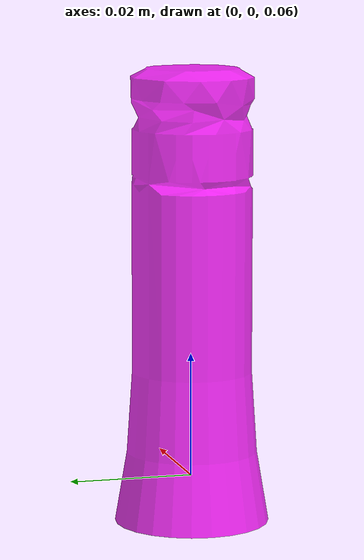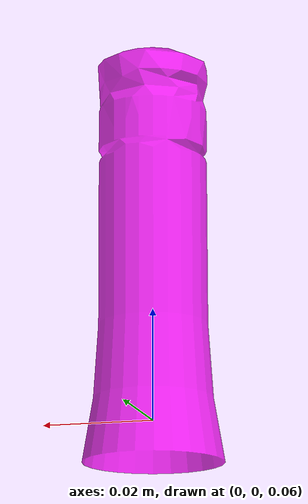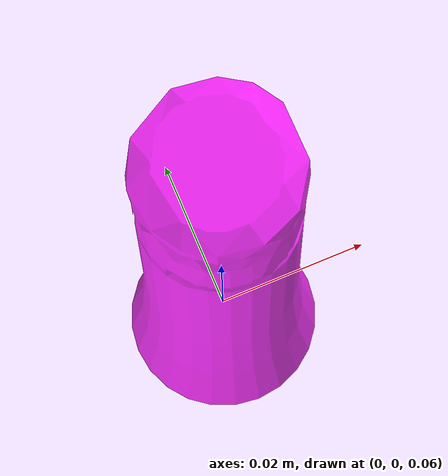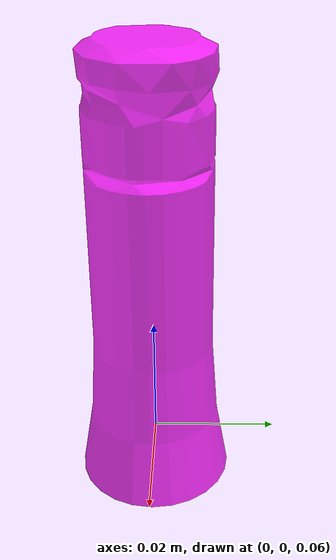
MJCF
<mujoco model="bottom_watertight_tiny">
  <default>
    <default group="2" type="mesh" contype="0" conaffinity="0">
      <geom group="2" type="mesh" contype="0" conaffinity="0"/>
    </default>
    <default group="3" type="mesh">
      <geom group="3" type="mesh"/>
    </default>
  </default>
  <asset>
    <mesh file="bottom_watertight_tiny.obj"/>
    <mesh file="bottom_watertight_tiny_collision_0.obj"/>
    <mesh file="bottom_watertight_tiny_collision_1.obj"/>
    <mesh file="bottom_watertight_tiny_collision_2.obj"/>
    <mesh file="bottom_watertight_tiny_collision_3.obj"/>
    <mesh file="bottom_watertight_tiny_collision_4.obj"/>
    <mesh file="bottom_watertight_tiny_collision_5.obj"/>
    <mesh file="bottom_watertight_tiny_collision_6.obj"/>
    <mesh file="bottom_watertight_tiny_collision_7.obj"/>
    <mesh file="bottom_watertight_tiny_collision_8.obj"/>
    <mesh file="bottom_watertight_tiny_collision_9.obj"/>
    <mesh file="bottom_watertight_tiny_collision_10.obj"/>
    <mesh file="bottom_watertight_tiny_collision_11.obj"/>
    <mesh file="bottom_watertight_tiny_collision_12.obj"/>
    <mesh file="bottom_watertight_tiny_collision_13.obj"/>
    <mesh file="bottom_watertight_tiny_collision_14.obj"/>
    <mesh file="bottom_watertight_tiny_collision_15.obj"/>
    <mesh file="bottom_watertight_tiny_collision_16.obj"/>
    <mesh file="bottom_watertight_tiny_collision_17.obj"/>
    <mesh file="bottom_watertight_tiny_collision_18.obj"/>
    <mesh file="bottom_watertight_tiny_collision_19.obj"/>
    <mesh file="bottom_watertight_tiny_collision_20.obj"/>
    <mesh file="bottom_watertight_tiny_collision_21.obj"/>
    <mesh file="bottom_watertight_tiny_collision_22.obj"/>
    <mesh file="bottom_watertight_tiny_collision_23.obj"/>
    <mesh file="bottom_watertight_tiny_collision_24.obj"/>
    <mesh file="bottom_watertight_tiny_collision_25.obj"/>
    <mesh file="bottom_watertight_tiny_collision_26.obj"/>
  </asset>
  <worldbody>
    <body name="bottom_watertight_tiny">
      <freejoint/>
      <geom mesh="bottom_watertight_tiny" group="2" type="mesh" rgba="1 0 1 0.8" contype="0" conaffinity="0"/>
      <geom mesh="bottom_watertight_tiny_collision_0" rgba="0.35929622434542474 0.5335324106220165 0.547537008218392 1" group="3" type="mesh"/>
      <geom mesh="bottom_watertight_tiny_collision_1" rgba="0.10389313740215256 0.604737080615019 0.17585887528209865 1" group="3" type="mesh"/>
      <geom mesh="bottom_watertight_tiny_collision_2" rgba="0.8514231528252627 0.8542429562146931 0.20506669275062084 1" group="3" type="mesh"/>
      <geom mesh="bottom_watertight_tiny_collision_3" rgba="0.1500750547924573 0.08475637025811722 0.19643050422616015 1" group="3" type="mesh"/>
      <geom mesh="bottom_watertight_tiny_collision_4" rgba="0.7786771412765078 0.5554513819106439 0.4519946416289343 1" group="3" type="mesh"/>
      <geom mesh="bottom_watertight_tiny_collision_5" rgba="0.23947296324676903 0.4637221318754776 0.8088414165247433 1" group="3" type="mesh"/>
      <geom mesh="bottom_watertight_tiny_collision_6" rgba="0.5454223272713049 0.8100546236389217 0.156687363661548 1" group="3" type="mesh"/>
      <geom mesh="bottom_watertight_tiny_collision_7" rgba="0.14033566717947754 0.3440566445827389 0.015632221062965357 1" group="3" type="mesh"/>
      <geom mesh="bottom_watertight_tiny_collision_8" rgba="0.45573881019024165 0.962127157279183 0.536314830968746 1" group="3" type="mesh"/>
      <geom mesh="bottom_watertight_tiny_collision_9" rgba="0.5499323094355917 0.9515876153187143 0.04656657847631296 1" group="3" type="mesh"/>
      <geom mesh="bottom_watertight_tiny_collision_10" rgba="0.23689138778305774 0.2828889842851726 0.7168591561368057 1" group="3" type="mesh"/>
      <geom mesh="bottom_watertight_tiny_collision_11" rgba="0.8652119519560255 0.6246258782280636 0.5219315706724257 1" group="3" type="mesh"/>
      <geom mesh="bottom_watertight_tiny_collision_12" rgba="0.9439008514469948 0.19248984762881394 0.7894069822387243 1" group="3" type="mesh"/>
      <geom mesh="bottom_watertight_tiny_collision_13" rgba="0.22294702305519387 0.7959679929698471 0.9230450451924487 1" group="3" type="mesh"/>
      <geom mesh="bottom_watertight_tiny_collision_14" rgba="0.544946511846379 0.38234237732887677 0.5743183066227019 1" group="3" type="mesh"/>
      <geom mesh="bottom_watertight_tiny_collision_15" rgba="0.5135206811941021 0.3605186033393428 0.6966875481869497 1" group="3" type="mesh"/>
      <geom mesh="bottom_watertight_tiny_collision_16" rgba="0.6432360324417005 0.3439088704962594 0.4667378015252922 1" group="3" type="mesh"/>
      <geom mesh="bottom_watertight_tiny_collision_17" rgba="0.08259463375500009 0.516831317432542 0.8958000535897087 1" group="3" type="mesh"/>
      <geom mesh="bottom_watertight_tiny_collision_18" rgba="0.6948582681625625 0.04686180971889975 0.3182323322926578 1" group="3" type="mesh"/>
      <geom mesh="bottom_watertight_tiny_collision_19" rgba="0.09041435963877731 0.3100846635743342 0.8497559556733059 1" group="3" type="mesh"/>
      <geom mesh="bottom_watertight_tiny_collision_20" rgba="0.665869601506727 0.5152163222606323 0.6467517673303608 1" group="3" type="mesh"/>
      <geom mesh="bottom_watertight_tiny_collision_21" rgba="0.9440240873831256 0.700093955138199 0.5692519458781425 1" group="3" type="mesh"/>
      <geom mesh="bottom_watertight_tiny_collision_22" rgba="0.841607353744871 0.7300360296088501 0.5282461544093636 1" group="3" type="mesh"/>
      <geom mesh="bottom_watertight_tiny_collision_23" rgba="0.01446590763441813 0.5007529757459441 0.8093587339237492 1" group="3" type="mesh"/>
      <geom mesh="bottom_watertight_tiny_collision_24" rgba="0.19836846780706086 0.11888833443458258 0.357009953912491 1" group="3" type="mesh"/>
      <geom mesh="bottom_watertight_tiny_collision_25" rgba="0.6498108052285041 0.6659037839614763 0.5390808372377656 1" group="3" type="mesh"/>
      <geom mesh="bottom_watertight_tiny_collision_26" rgba="0.20773251973438345 0.19196780671755287 0.9925755047340743 1" group="3" type="mesh"/>
    </body>
  </worldbody>
</mujoco>
